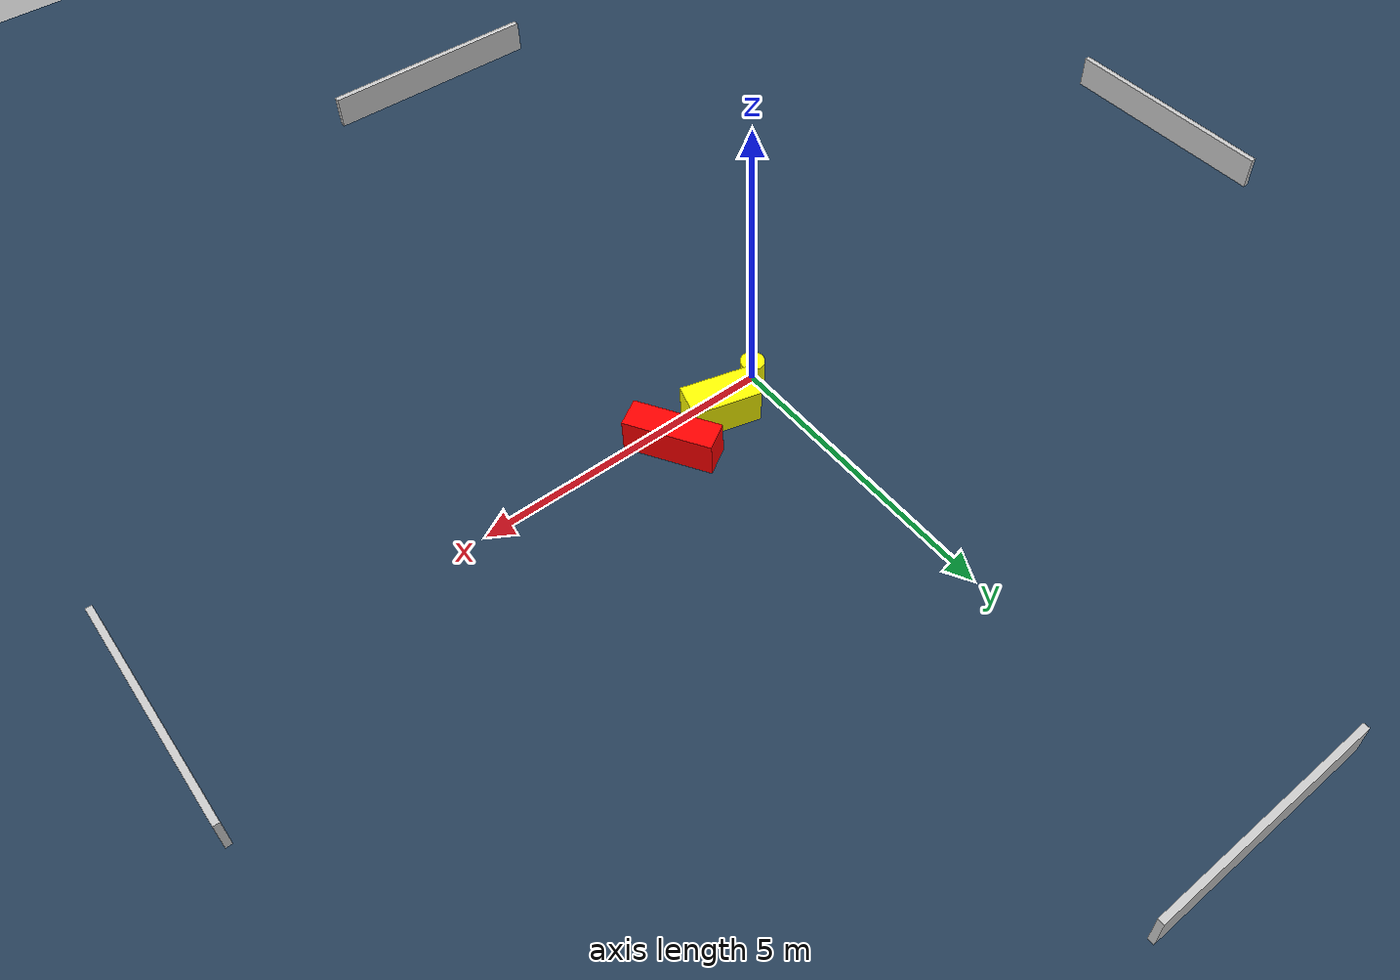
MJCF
<?xml version="1.0" ?>
<mujoco model="generated_environment">
  <option timestep="0.01" integrator="RK4" cone="elliptic"/>
  <default>
    <geom density="1"/>
  </default>
  <asset>
    <texture builtin="gradient" height="3072" name="skybox" rgb1="0.3 0.5 0.7" rgb2="0 0 0" type="skybox" width="512"/>
    <texture builtin="checker" height="300" name="groundplane" rgb1="0.2 0.3 0.4" rgb2="0.1 0.2 0.3" type="2d" width="300"/>
    <material name="groundplane" reflectance="0.2" texrepeat="5 5" texture="groundplane"/>
  </asset>
  <worldbody>
    <light dir="0 0 -1" directional="true" pos="0 0 1.5"/>
    <geom condim="3" friction="0.5 0.005 0.001" material="groundplane" name="floor" pos="0 0 0" size="0 0 0.05" type="plane"/>
    <body name="walls">
      <geom name="wall_1" condim="4" pos="-10.0 0.0 0.3" rgba="0.800000011920929 0.800000011920929 0.800000011920929 1.0" size="0.05 2.0 0.3" type="box"/>
      <geom name="wall_2" condim="4" pos="10.0 0.0 0.3" rgba="0.800000011920929 0.800000011920929 0.800000011920929 1.0" size="0.05 2.0 0.3" type="box"/>
      <geom name="wall_3" condim="4" pos="0.0 -10.0 0.3" rgba="0.800000011920929 0.800000011920929 0.800000011920929 1.0" size="2.0 0.05 0.3" type="box"/>
      <geom name="wall_4" condim="4" pos="0.0 10.0 0.3" rgba="0.800000011920929 0.800000011920929 0.800000011920929 1.0" size="2.0 0.05 0.3" type="box"/>
    </body>
    <body name="robot">
      <joint name="joint_x" type="slide" pos="0 0 0" axis="1 0 0"/>
      <joint name="joint_y" type="slide" pos="0 0 0" axis="0 1 0"/>
      <geom name="robot" type="cylinder" pos="0.0 0.0 0.2" size="0.2 0.2 0.0" mass="5.0" friction="1.0 0.005 0.0001" condim="4" rgba="1.0 1.0 0.0 1.0"/>
    </body>
    <body name="obstacle_1_movable">
      <geom name="obstacle_1_movable" condim="4" pos="0.8952148400312426 0.317574991078001 0.3" euler="0 0 74.51521860505417" friction="0.0 0.005 0.001" rgba="1.0 1.0 0.0 1.0" size="0.2993234705093455 0.5593943659196035 0.3" type="box" mass="0.1"/>
      <joint type="free"/>
    </body>
    <body name="obstacle_2_static">
      <geom name="obstacle_2_static" condim="4" pos="1.8780513891796882 0.3878465322315342 0.3" euler="0 0 301.1960465221527" friction="0.0 0.005 0.001" rgba="1.0 0.0 0.0 1.0" size="0.7287169924502366 0.24221091083355029 0.3" type="box"/>
    </body>
  </worldbody>
  <actuator>
    <motor name="actuator_x" joint="joint_x" gear="1" ctrlrange="-1 1"/>
    <motor name="actuator_y" joint="joint_y" gear="1" ctrlrange="-1 1"/>
  </actuator>
</mujoco>
